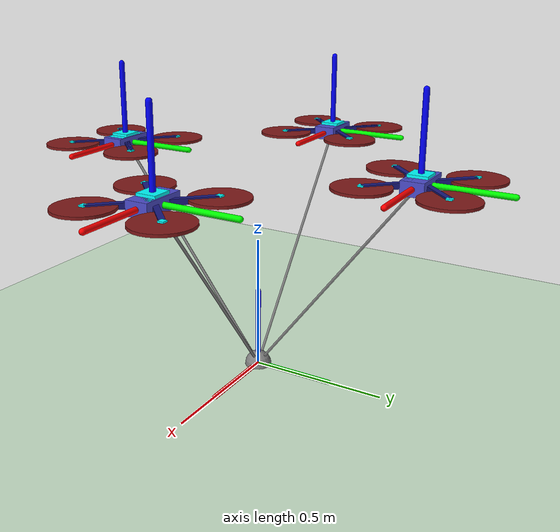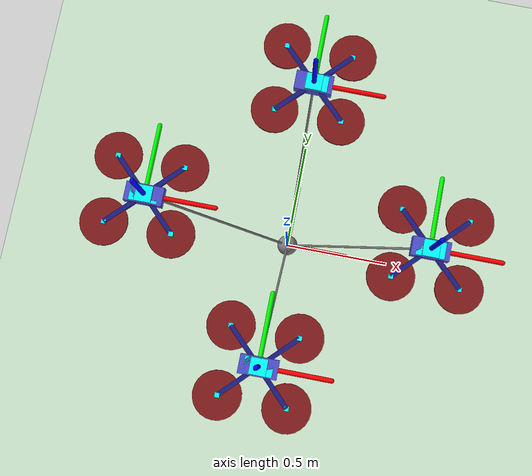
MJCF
<?xml version="1.0" ?>
<mujoco model="QuadSuspend">
  <option timestep="0.02" gravity="0 0 -9.81" wind="0 0 0" density="1" viscosity="1e-5"/>
  <compiler angle="radian" coordinate="local" inertiafromgeom="false"/>
  <visual>
    <map fogstart="3.0" fogend="5.0" force="0.1" znear="0.1"/>
  </visual>
  <asset>
    <texture type="skybox" builtin="gradient" rgb1="1.0 1.0 1.0" rgb2="0.6 0.8 1.0" width="256" height="256"/>
  </asset>
  <worldbody>
    <geom name="ground" type="plane" size="25.0 25.0 0.02" friction="1.0" pos="0.0 0.0 0.0" rgba="0.8 0.9 0.8 1.0"/>
    <light directional="true" diffuse=".9 .9 .9" specular=".3 .3 .3" pos="0 0 4.0" dir="0 0.15 -1"/>
    <body name="quadrotor0" pos="0.6 0.0 0.8" quat="1 0 0 0">
      <inertial pos="0. 0. 0." mass="0.75" diaginertia="0.0053 0.0049 0.0098"/>
      <body name="xyz_axes_0" pos="0 0 0 ">
        <geom type="capsule" size="0.01" fromto="0 0 0 0.3 0 0" rgba="1 0 0 1"/>
        <geom type="capsule" size="0.01" fromto="0 0 0 0 0.3 0" rgba="0 1 0 1"/>
        <geom type="capsule" size="0.01" fromto="0 0 0 0 0 0.3" rgba="0 0 1 1"/>
      </body>
      <geom name="quad0_geom" type="box" pos="0.0 0.0 0.0" quat="1 0 0 0" size="0.08 0.04 0.025" rgba="0.3 0.3 0.8 1.0"/>
      <site name="quad0_end" pos="0.0 0 0.0" type="sphere" size="0.01"/>
      <joint name="quad0_root_joint" type="free" limited="false" pos="0.0 0.0 0.0" axis="0.0 0.0 1.0" range="-1.0 1.0" armature="0.0" damping="0.0" stiffness="0.0"/>
      <geom name="quad0_rotor_arm_geom_0" type="box" pos="0.0 0.0 0.0" quat="0.92388 0 0 0.382683" size="0.2 0.01 0.01" rgba="0.1 0.1 0.5 1.0"/>
      <geom name="quad0_rotor_prop_geom_0" type="cylinder" size="0.1 0.005" pos="0.1414213562373095 0.14142135623730953 0.0" rgba="0.5 0.1 0.1 1.0"/>
      <site name="quad0_site0" type="box" pos="0.1414213562373095 0.14142135623730953 0.0" quat="1 0 0 0" size="0.01 0.01 0.01" rgba="0.0 1 1 1.0"/>
      <geom name="quad0_rotor_arm_geom_1" type="box" pos="0.0 0.0 0.0" quat="0.382683 0 0 0.92388" size="0.2 0.01 0.01" rgba="0.1 0.1 0.5 1.0"/>
      <geom name="quad0_rotor_prop_geom_1" type="cylinder" size="0.1 0.005" pos="-0.1414213562373095 0.14142135623730953 0.0" rgba="0.5 0.1 0.1 1.0"/>
      <site name="quad0_site1" type="box" pos="-0.1414213562373095 0.14142135623730953 0.0" quat="1 0 0 0" size="0.01 0.01 0.01" rgba="0.0 1 1 1.0"/>
      <geom name="quad0_rotor_arm_geom_2" type="box" pos="0.0 0.0 0.0" quat="-0.382683 0 0 0.92388" size="0.2 0.01 0.01" rgba="0.1 0.1 0.5 1.0"/>
      <geom name="quad0_rotor_prop_geom_2" type="cylinder" size="0.1 0.005" pos="-0.1414213562373095 -0.1414213562373095 0.0" rgba="0.5 0.1 0.1 1.0"/>
      <site name="quad0_site2" type="box" pos="-0.1414213562373095 -0.1414213562373095 0.0" quat="1 0 0 0" size="0.01 0.01 0.01" rgba="0.0 1 1 1.0"/>
      <geom name="quad0_rotor_arm_geom_3" type="box" pos="0.0 0.0 0.0" quat="-0.92388 0 0 0.382683" size="0.2 0.01 0.01" rgba="0.1 0.1 0.5 1.0"/>
      <geom name="quad0_rotor_prop_geom_3" type="cylinder" size="0.1 0.005" pos="0.1414213562373095 -0.14142135623730953 0.0" rgba="0.5 0.1 0.1 1.0"/>
      <site name="quad0_site3" type="box" pos="0.1414213562373095 -0.14142135623730953 0.0" quat="1 0 0 0" size="0.01 0.01 0.01" rgba="0.0 1 1 1.0"/>
      <site name="quad0_thrust" type="box" pos="0.0 0.0 0.0" quat="1 0 0 0" size="0.035 0.035 0.035" rgba="0.0 1 1 1.0"/>
      <site name="quad0_Mx" type="box" pos="0.0 0.0 0.0" quat="1 0 0 0" size="0.06 0.035 0.025" rgba="0.0 1 1 1.0"/>
      <site name="quad0_My" type="box" pos="0.0 0.0 0.0" quat="1 0 0 0" size="0.06 0.035 0.025" rgba="0.0 1 1 1.0"/>
      <site name="quad0_Mz" type="box" pos="0.0 0.0 0.0" quat="1 0 0 0" size="0.06 0.035 0.025" rgba="0.0 1 1 1.0"/>
    </body>
    <body name="quadrotor1" pos="0.0 0.6 0.8" quat="1 0 0 0">
      <inertial pos="0. 0. 0." mass="0.75" diaginertia="0.0053 0.0049 0.0098"/>
      <body name="xyz_axes_1" pos="0 0 0 ">
        <geom type="capsule" size="0.01" fromto="0 0 0 0.3 0 0" rgba="1 0 0 1"/>
        <geom type="capsule" size="0.01" fromto="0 0 0 0 0.3 0" rgba="0 1 0 1"/>
        <geom type="capsule" size="0.01" fromto="0 0 0 0 0 0.3" rgba="0 0 1 1"/>
      </body>
      <geom name="quad1_geom" type="box" pos="0.0 0.0 0.0" quat="1 0 0 0" size="0.08 0.04 0.025" rgba="0.3 0.3 0.8 1.0"/>
      <site name="quad1_end" pos="0.0 0 0.0" type="sphere" size="0.01"/>
      <joint name="quad1_root_joint" type="free" limited="false" pos="0.0 0.0 0.0" axis="0.0 0.0 1.0" range="-1.0 1.0" armature="0.0" damping="0.0" stiffness="0.0"/>
      <geom name="quad1_rotor_arm_geom_0" type="box" pos="0.0 0.0 0.0" quat="0.92388 0 0 0.382683" size="0.2 0.01 0.01" rgba="0.1 0.1 0.5 1.0"/>
      <geom name="quad1_rotor_prop_geom_0" type="cylinder" size="0.1 0.005" pos="0.1414213562373095 0.14142135623730953 0.0" rgba="0.5 0.1 0.1 1.0"/>
      <site name="quad1_site0" type="box" pos="0.1414213562373095 0.14142135623730953 0.0" quat="1 0 0 0" size="0.01 0.01 0.01" rgba="0.0 1 1 1.0"/>
      <geom name="quad1_rotor_arm_geom_1" type="box" pos="0.0 0.0 0.0" quat="0.382683 0 0 0.92388" size="0.2 0.01 0.01" rgba="0.1 0.1 0.5 1.0"/>
      <geom name="quad1_rotor_prop_geom_1" type="cylinder" size="0.1 0.005" pos="-0.1414213562373095 0.14142135623730953 0.0" rgba="0.5 0.1 0.1 1.0"/>
      <site name="quad1_site1" type="box" pos="-0.1414213562373095 0.14142135623730953 0.0" quat="1 0 0 0" size="0.01 0.01 0.01" rgba="0.0 1 1 1.0"/>
      <geom name="quad1_rotor_arm_geom_2" type="box" pos="0.0 0.0 0.0" quat="-0.382683 0 0 0.92388" size="0.2 0.01 0.01" rgba="0.1 0.1 0.5 1.0"/>
      <geom name="quad1_rotor_prop_geom_2" type="cylinder" size="0.1 0.005" pos="-0.1414213562373095 -0.1414213562373095 0.0" rgba="0.5 0.1 0.1 1.0"/>
      <site name="quad1_site2" type="box" pos="-0.1414213562373095 -0.1414213562373095 0.0" quat="1 0 0 0" size="0.01 0.01 0.01" rgba="0.0 1 1 1.0"/>
      <geom name="quad1_rotor_arm_geom_3" type="box" pos="0.0 0.0 0.0" quat="-0.92388 0 0 0.382683" size="0.2 0.01 0.01" rgba="0.1 0.1 0.5 1.0"/>
      <geom name="quad1_rotor_prop_geom_3" type="cylinder" size="0.1 0.005" pos="0.1414213562373095 -0.14142135623730953 0.0" rgba="0.5 0.1 0.1 1.0"/>
      <site name="quad1_site3" type="box" pos="0.1414213562373095 -0.14142135623730953 0.0" quat="1 0 0 0" size="0.01 0.01 0.01" rgba="0.0 1 1 1.0"/>
      <site name="quad1_thrust" type="box" pos="0.0 0.0 0.0" quat="1 0 0 0" size="0.035 0.035 0.035" rgba="0.0 1 1 1.0"/>
      <site name="quad1_Mx" type="box" pos="0.0 0.0 0.0" quat="1 0 0 0" size="0.06 0.035 0.025" rgba="0.0 1 1 1.0"/>
      <site name="quad1_My" type="box" pos="0.0 0.0 0.0" quat="1 0 0 0" size="0.06 0.035 0.025" rgba="0.0 1 1 1.0"/>
      <site name="quad1_Mz" type="box" pos="0.0 0.0 0.0" quat="1 0 0 0" size="0.06 0.035 0.025" rgba="0.0 1 1 1.0"/>
    </body>
    <body name="quadrotor2" pos="-0.6 0.0 0.8" quat="1 0 0 0">
      <inertial pos="0. 0. 0." mass="0.75" diaginertia="0.0053 0.0049 0.0098"/>
      <body name="xyz_axes_2" pos="0 0 0 ">
        <geom type="capsule" size="0.01" fromto="0 0 0 0.3 0 0" rgba="1 0 0 1"/>
        <geom type="capsule" size="0.01" fromto="0 0 0 0 0.3 0" rgba="0 1 0 1"/>
        <geom type="capsule" size="0.01" fromto="0 0 0 0 0 0.3" rgba="0 0 1 1"/>
      </body>
      <geom name="quad2_geom" type="box" pos="0.0 0.0 0.0" quat="1 0 0 0" size="0.08 0.04 0.025" rgba="0.3 0.3 0.8 1.0"/>
      <site name="quad2_end" pos="0.0 0 0.0" type="sphere" size="0.01"/>
      <joint name="quad2_root_joint" type="free" limited="false" pos="0.0 0.0 0.0" axis="0.0 0.0 1.0" range="-1.0 1.0" armature="0.0" damping="0.0" stiffness="0.0"/>
      <geom name="quad2_rotor_arm_geom_0" type="box" pos="0.0 0.0 0.0" quat="0.92388 0 0 0.382683" size="0.2 0.01 0.01" rgba="0.1 0.1 0.5 1.0"/>
      <geom name="quad2_rotor_prop_geom_0" type="cylinder" size="0.1 0.005" pos="0.1414213562373095 0.14142135623730953 0.0" rgba="0.5 0.1 0.1 1.0"/>
      <site name="quad2_site0" type="box" pos="0.1414213562373095 0.14142135623730953 0.0" quat="1 0 0 0" size="0.01 0.01 0.01" rgba="0.0 1 1 1.0"/>
      <geom name="quad2_rotor_arm_geom_1" type="box" pos="0.0 0.0 0.0" quat="0.382683 0 0 0.92388" size="0.2 0.01 0.01" rgba="0.1 0.1 0.5 1.0"/>
      <geom name="quad2_rotor_prop_geom_1" type="cylinder" size="0.1 0.005" pos="-0.1414213562373095 0.14142135623730953 0.0" rgba="0.5 0.1 0.1 1.0"/>
      <site name="quad2_site1" type="box" pos="-0.1414213562373095 0.14142135623730953 0.0" quat="1 0 0 0" size="0.01 0.01 0.01" rgba="0.0 1 1 1.0"/>
      <geom name="quad2_rotor_arm_geom_2" type="box" pos="0.0 0.0 0.0" quat="-0.382683 0 0 0.92388" size="0.2 0.01 0.01" rgba="0.1 0.1 0.5 1.0"/>
      <geom name="quad2_rotor_prop_geom_2" type="cylinder" size="0.1 0.005" pos="-0.1414213562373095 -0.1414213562373095 0.0" rgba="0.5 0.1 0.1 1.0"/>
      <site name="quad2_site2" type="box" pos="-0.1414213562373095 -0.1414213562373095 0.0" quat="1 0 0 0" size="0.01 0.01 0.01" rgba="0.0 1 1 1.0"/>
      <geom name="quad2_rotor_arm_geom_3" type="box" pos="0.0 0.0 0.0" quat="-0.92388 0 0 0.382683" size="0.2 0.01 0.01" rgba="0.1 0.1 0.5 1.0"/>
      <geom name="quad2_rotor_prop_geom_3" type="cylinder" size="0.1 0.005" pos="0.1414213562373095 -0.14142135623730953 0.0" rgba="0.5 0.1 0.1 1.0"/>
      <site name="quad2_site3" type="box" pos="0.1414213562373095 -0.14142135623730953 0.0" quat="1 0 0 0" size="0.01 0.01 0.01" rgba="0.0 1 1 1.0"/>
      <site name="quad2_thrust" type="box" pos="0.0 0.0 0.0" quat="1 0 0 0" size="0.035 0.035 0.035" rgba="0.0 1 1 1.0"/>
      <site name="quad2_Mx" type="box" pos="0.0 0.0 0.0" quat="1 0 0 0" size="0.06 0.035 0.025" rgba="0.0 1 1 1.0"/>
      <site name="quad2_My" type="box" pos="0.0 0.0 0.0" quat="1 0 0 0" size="0.06 0.035 0.025" rgba="0.0 1 1 1.0"/>
      <site name="quad2_Mz" type="box" pos="0.0 0.0 0.0" quat="1 0 0 0" size="0.06 0.035 0.025" rgba="0.0 1 1 1.0"/>
    </body>
    <body name="quadrotor3" pos="0.0 -0.6 0.8" quat="1 0 0 0">
      <inertial pos="0. 0. 0." mass="0.75" diaginertia="0.0053 0.0049 0.0098"/>
      <body name="xyz_axes_3" pos="0 0 0 ">
        <geom type="capsule" size="0.01" fromto="0 0 0 0.3 0 0" rgba="1 0 0 1"/>
        <geom type="capsule" size="0.01" fromto="0 0 0 0 0.3 0" rgba="0 1 0 1"/>
        <geom type="capsule" size="0.01" fromto="0 0 0 0 0 0.3" rgba="0 0 1 1"/>
      </body>
      <geom name="quad3_geom" type="box" pos="0.0 0.0 0.0" quat="1 0 0 0" size="0.08 0.04 0.025" rgba="0.3 0.3 0.8 1.0"/>
      <site name="quad3_end" pos="0.0 0 0.0" type="sphere" size="0.01"/>
      <joint name="quad3_root_joint" type="free" limited="false" pos="0.0 0.0 0.0" axis="0.0 0.0 1.0" range="-1.0 1.0" armature="0.0" damping="0.0" stiffness="0.0"/>
      <geom name="quad3_rotor_arm_geom_0" type="box" pos="0.0 0.0 0.0" quat="0.92388 0 0 0.382683" size="0.2 0.01 0.01" rgba="0.1 0.1 0.5 1.0"/>
      <geom name="quad3_rotor_prop_geom_0" type="cylinder" size="0.1 0.005" pos="0.1414213562373095 0.14142135623730953 0.0" rgba="0.5 0.1 0.1 1.0"/>
      <site name="quad3_site0" type="box" pos="0.1414213562373095 0.14142135623730953 0.0" quat="1 0 0 0" size="0.01 0.01 0.01" rgba="0.0 1 1 1.0"/>
      <geom name="quad3_rotor_arm_geom_1" type="box" pos="0.0 0.0 0.0" quat="0.382683 0 0 0.92388" size="0.2 0.01 0.01" rgba="0.1 0.1 0.5 1.0"/>
      <geom name="quad3_rotor_prop_geom_1" type="cylinder" size="0.1 0.005" pos="-0.1414213562373095 0.14142135623730953 0.0" rgba="0.5 0.1 0.1 1.0"/>
      <site name="quad3_site1" type="box" pos="-0.1414213562373095 0.14142135623730953 0.0" quat="1 0 0 0" size="0.01 0.01 0.01" rgba="0.0 1 1 1.0"/>
      <geom name="quad3_rotor_arm_geom_2" type="box" pos="0.0 0.0 0.0" quat="-0.382683 0 0 0.92388" size="0.2 0.01 0.01" rgba="0.1 0.1 0.5 1.0"/>
      <geom name="quad3_rotor_prop_geom_2" type="cylinder" size="0.1 0.005" pos="-0.1414213562373095 -0.1414213562373095 0.0" rgba="0.5 0.1 0.1 1.0"/>
      <site name="quad3_site2" type="box" pos="-0.1414213562373095 -0.1414213562373095 0.0" quat="1 0 0 0" size="0.01 0.01 0.01" rgba="0.0 1 1 1.0"/>
      <geom name="quad3_rotor_arm_geom_3" type="box" pos="0.0 0.0 0.0" quat="-0.92388 0 0 0.382683" size="0.2 0.01 0.01" rgba="0.1 0.1 0.5 1.0"/>
      <geom name="quad3_rotor_prop_geom_3" type="cylinder" size="0.1 0.005" pos="0.1414213562373095 -0.14142135623730953 0.0" rgba="0.5 0.1 0.1 1.0"/>
      <site name="quad3_site3" type="box" pos="0.1414213562373095 -0.14142135623730953 0.0" quat="1 0 0 0" size="0.01 0.01 0.01" rgba="0.0 1 1 1.0"/>
      <site name="quad3_thrust" type="box" pos="0.0 0.0 0.0" quat="1 0 0 0" size="0.035 0.035 0.035" rgba="0.0 1 1 1.0"/>
      <site name="quad3_Mx" type="box" pos="0.0 0.0 0.0" quat="1 0 0 0" size="0.06 0.035 0.025" rgba="0.0 1 1 1.0"/>
      <site name="quad3_My" type="box" pos="0.0 0.0 0.0" quat="1 0 0 0" size="0.06 0.035 0.025" rgba="0.0 1 1 1.0"/>
      <site name="quad3_Mz" type="box" pos="0.0 0.0 0.0" quat="1 0 0 0" size="0.06 0.035 0.025" rgba="0.0 1 1 1.0"/>
    </body>
    <body name="payload" pos="0.0 0.0 0.0" quat="1 0 0 0">
      <inertial pos="0. 0. 0." mass="1" diaginertia="0.00015 0.00015 0.00015"/>
      <geom type="sphere" pos="0. 0. 0.0" size="0.05"/>
      <site name="end" pos="0.0 0 0.0" type="sphere" size="0.01"/>
      <joint type="free"/>
    </body>
    <body name="xyz_axes" pos="0 0 0 ">
      <geom type="capsule" size="0.01" fromto="0 0 0 0.3 0 0" rgba="1 0 0 1" contype="0" conaffinity="0"/>
      <geom type="capsule" size="0.01" fromto="0 0 0 0 0.3 0" rgba="0 1 0 1" contype="0" conaffinity="0"/>
      <geom type="capsule" size="0.01" fromto="0 0 0 0 0 0.3" rgba="0 0 1 1" contype="0" conaffinity="0"/>
    </body>
  </worldbody>
  <actuator>
    <motor ctrllimited="true" site="quad0_thrust" ctrlrange="0.0 40.0" gear="0.0 0.0 1.0 0.0 0.0 0.0"/>
    <motor ctrllimited="true" site="quad0_Mx" ctrlrange="-3.0 3.0" gear="0.0 0.0 0.0 1.0 0.0 0.0"/>
    <motor ctrllimited="true" site="quad0_My" ctrlrange="-3.0 3.0" gear="0.0 0.0 0.0 0.0 1.0 0.0"/>
    <motor ctrllimited="true" site="quad0_Mz" ctrlrange="-3.0 3.0" gear="0.0 0.0 0.0 0.0 0.0 1.0"/>
    <motor ctrllimited="true" site="quad1_thrust" ctrlrange="0.0 40.0" gear="0.0 0.0 1.0 0.0 0.0 0.0"/>
    <motor ctrllimited="true" site="quad1_Mx" ctrlrange="-3.0 3.0" gear="0.0 0.0 0.0 1.0 0.0 0.0"/>
    <motor ctrllimited="true" site="quad1_My" ctrlrange="-3.0 3.0" gear="0.0 0.0 0.0 0.0 1.0 0.0"/>
    <motor ctrllimited="true" site="quad1_Mz" ctrlrange="-3.0 3.0" gear="0.0 0.0 0.0 0.0 0.0 1.0"/>
    <motor ctrllimited="true" site="quad2_thrust" ctrlrange="0.0 40.0" gear="0.0 0.0 1.0 0.0 0.0 0.0"/>
    <motor ctrllimited="true" site="quad2_Mx" ctrlrange="-3.0 3.0" gear="0.0 0.0 0.0 1.0 0.0 0.0"/>
    <motor ctrllimited="true" site="quad2_My" ctrlrange="-3.0 3.0" gear="0.0 0.0 0.0 0.0 1.0 0.0"/>
    <motor ctrllimited="true" site="quad2_Mz" ctrlrange="-3.0 3.0" gear="0.0 0.0 0.0 0.0 0.0 1.0"/>
    <motor ctrllimited="true" site="quad3_thrust" ctrlrange="0.0 40.0" gear="0.0 0.0 1.0 0.0 0.0 0.0"/>
    <motor ctrllimited="true" site="quad3_Mx" ctrlrange="-3.0 3.0" gear="0.0 0.0 0.0 1.0 0.0 0.0"/>
    <motor ctrllimited="true" site="quad3_My" ctrlrange="-3.0 3.0" gear="0.0 0.0 0.0 0.0 1.0 0.0"/>
    <motor ctrllimited="true" site="quad3_Mz" ctrlrange="-3.0 3.0" gear="0.0 0.0 0.0 0.0 0.0 1.0"/>
  </actuator>
  <tendon>
    <spatial name="tendon0" limited="true" range="0.0 1.5" width="0.005" damping="0.0" stiffness="0.0">
      <site site="quad0_end"/>
      <site site="end"/>
    </spatial>
    <spatial name="tendon1" limited="true" range="0.0 1.5" width="0.005" damping="0.0" stiffness="0.0">
      <site site="quad1_end"/>
      <site site="end"/>
    </spatial>
    <spatial name="tendon2" limited="true" range="0.0 1.5" width="0.005" damping="0.0" stiffness="0.0">
      <site site="quad2_end"/>
      <site site="end"/>
    </spatial>
    <spatial name="tendon3" limited="true" range="0.0 1.5" width="0.005" damping="0.0" stiffness="0.0">
      <site site="quad3_end"/>
      <site site="end"/>
    </spatial>
  </tendon>
  <sensor>
    <tendonlimitfrc tendon="tendon0"/>
    <tendonlimitfrc tendon="tendon1"/>
    <tendonlimitfrc tendon="tendon2"/>
    <tendonlimitfrc tendon="tendon3"/>
    <accelerometer name="quad0_acc" site="quad0_end"/>
    <accelerometer name="quad1_acc" site="quad1_end"/>
    <accelerometer name="quad2_acc" site="quad2_end"/>
    <accelerometer name="quad3_acc" site="quad3_end"/>
    <accelerometer name="payload_acc" site="end"/>
  </sensor>
</mujoco>
